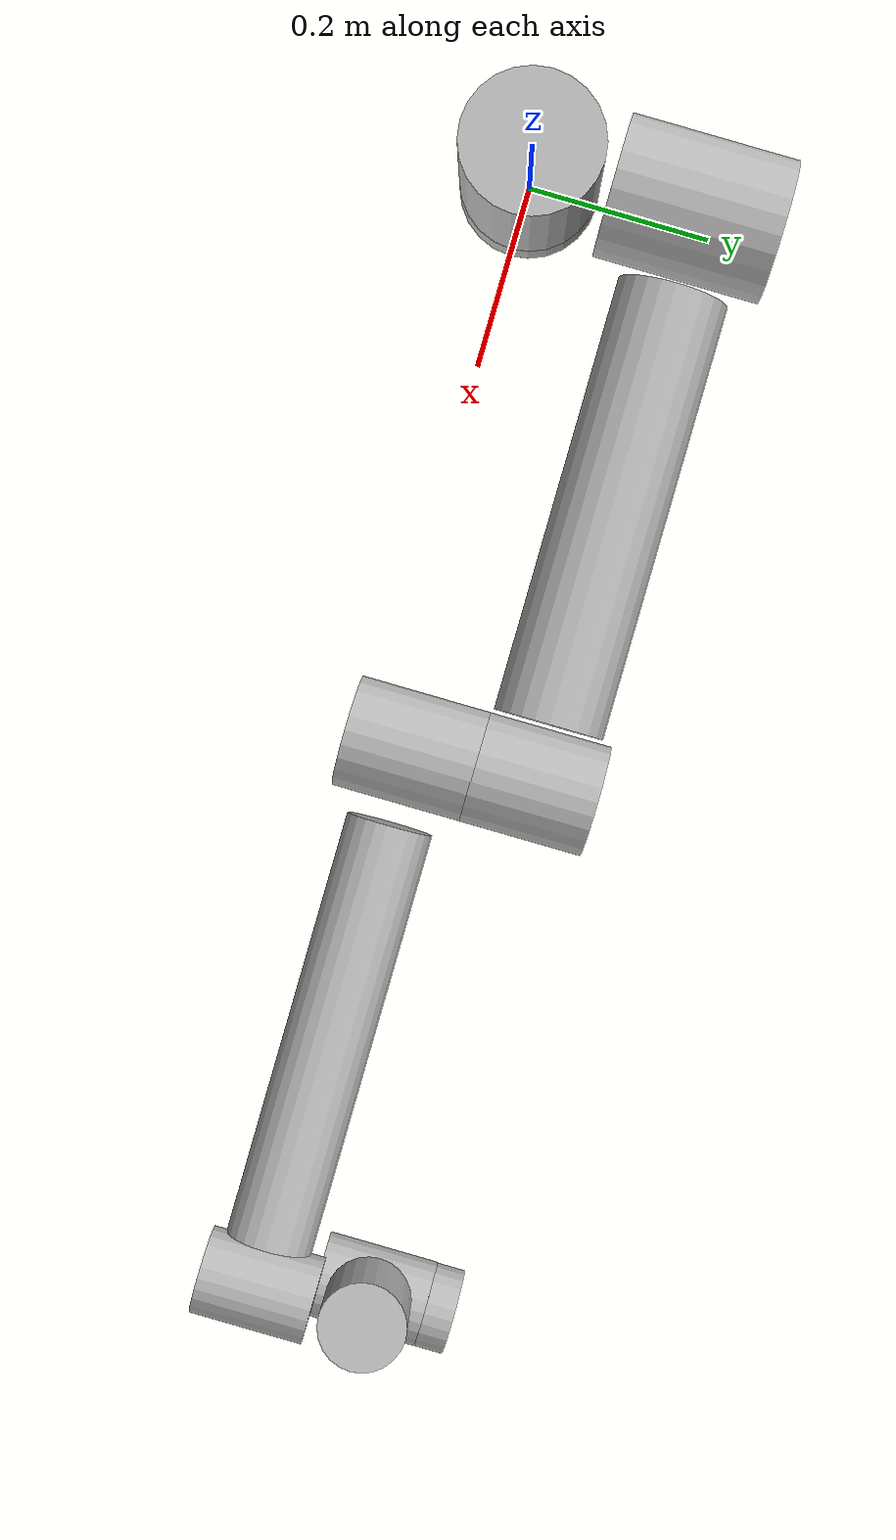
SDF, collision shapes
<?xml version='1.0'?>
<sdf version='1.5'>
  <model name='ur10'>
    <link name='base'>
      <inertial>
        <mass>4</mass>
        <inertia>
          <ixx>0.00610633</ixx>
          <ixy>0</ixy>
          <ixz>0</ixz>
          <iyy>0.00610633</iyy>
          <iyz>0</iyz>
          <izz>0.01125</izz>
        </inertia>
      </inertial>
      <collision name='base_collision'>
        <pose>0 0 0.019 0 -0 0</pose>
        <geometry>
          <cylinder>
            <radius>0.075</radius>
            <length>0.038</length>
          </cylinder>
        </geometry>
      </collision>
      <visual name='base_visual'>
        <geometry>
          <mesh>
            <uri>model://ur10/meshes/base.dae</uri>
          </mesh>
        </geometry>
      </visual>
    </link>
    <link name='shoulder'>
      <pose>0 0 .1273 0 -0 0</pose>
      <inertial>
        <mass>7.778</mass>
        <inertia>
          <ixx>0.0314743</ixx>
          <ixy>0</ixy>
          <ixz>0</ixz>
          <iyy>0.0314743</iyy>
          <iyz>0</iyz>
          <izz>0.0218756</izz>
        </inertia>
      </inertial>
      <collision name='shoulder_collision'>
        <geometry>
          <cylinder>
            <radius>0.075</radius>
            <length>0.177</length>
          </cylinder>
        </geometry>
      </collision>
      <visual name='shoulder_visual'>
        <geometry>
          <mesh>
            <uri>model://ur10/meshes/shoulder.dae</uri>
          </mesh>
        </geometry>
      </visual>
    </link>

    <link name='upper_arm'>
      <pose>0 0.220941 0.1273 3.14159 1.57079 3.14159</pose>
      <inertial>
        <pose>0 0 0.306 0 0 0</pose>
        <mass>12.93</mass>
        <inertia>
          <ixx>0.421754</ixx>
          <ixy>0</ixy>
          <ixz>0</ixz>
          <iyy>0.421754</iyy>
          <iyz>0</iyz>
          <izz>0.0363656</izz>
        </inertia>
      </inertial>

      <collision name='upper_arm_collision1'>
        <pose>0 -0.045 0 1.5707 0 0</pose>
        <geometry>
          <cylinder>
            <radius>0.075</radius>
            <length>0.177</length>
          </cylinder>
        </geometry>
      </collision>

      <collision name='upper_arm_collision2'>
        <pose>0 -0.0436 0.32 0 0 1.5707</pose>
        <geometry>
          <cylinder>
            <radius>0.058</radius>
            <length>0.461</length>
          </cylinder>
        </geometry>
      </collision>

      <collision name='upper_arm_collision3'>
        <pose>0 -0.040 0.613 1.5707 0 0</pose>
        <geometry>
          <cylinder>
            <radius>0.058</radius>
            <length>0.129</length>
          </cylinder>
        </geometry>
      </collision>

      <visual name='upper_arm_visual'>
        <geometry>
          <mesh>
            <uri>model://ur10/meshes/upperarm.dae</uri>
          </mesh>
        </geometry>
      </visual>
    </link>

    <link name='forearm'>
      <pose>0.612 0.049041 0.1273 3.14159 1.57079 3.14159</pose>
      <inertial>
        <pose>0 0 0.28615 0 -0 0</pose>
        <mass>3.87</mass>
        <inertia>
          <ixx>0.11107</ixx>
          <ixy>0</ixy>
          <ixz>0</ixz>
          <iyy>0.11107</iyy>
          <iyz>0</iyz>
          <izz>0.0108844</izz>
        </inertia>
      </inertial>
      <collision name='forearm_collision1'>
        <pose>0 0 0.001 1.5707 0 0</pose>
        <geometry>
          <cylinder>
            <radius>0.058</radius>
            <length>0.136</length>
          </cylinder>
        </geometry>
      </collision>

      <collision name='forearm_collision2'>
        <pose>0 0 0.305 0 0 1.5707</pose>
        <geometry>
          <cylinder>
            <radius>0.045</radius>
            <length>0.447</length>
          </cylinder>
        </geometry>
      </collision>

      <collision name='forearm_collision3'>
        <pose>0 0.001 0.5735 1.5707 0 0</pose>
        <geometry>
          <cylinder>
            <radius>0.045</radius>
            <length>0.119</length>
          </cylinder>
        </geometry>
      </collision>

      <visual name='forearm_visual'>
        <geometry>
          <mesh>
            <uri>model://ur10/meshes/forearm.dae</uri>
          </mesh>
        </geometry>
      </visual>
    </link>

    <link name='wrist_1'>
      <pose>1.1843 0.049041 0.1273 3.14159 3.58979e-09 3.14159</pose>
      <inertial>
        <mass>1.96</mass>
        <inertia>
          <ixx>0.00510825</ixx>
          <ixy>0</ixy>
          <ixz>0</ixz>
          <iyy>0.00510825</iyy>
          <iyz>0</iyz>
          <izz>0.0055125</izz>
        </inertia>
      </inertial>
      <collision name='wrist_1_collision'>
        <pose>0 0.115 0.0025 0 0 0</pose>
        <geometry>
          <cylinder>
            <radius>0.0455</radius>
            <length>0.119</length>
          </cylinder>
        </geometry>
      </collision>
      <visual name='wrist_1_visual'>
        <geometry>
          <mesh>
            <uri>model://ur10/meshes/wrist1.dae</uri>
          </mesh>
        </geometry>
      </visual>
    </link>

    <link name='wrist_2'>
      <pose>1.1843 0.163941 0.1273 3.14159 3.58979e-09 3.14159</pose>
      <inertial>
        <mass>1.96</mass>
        <inertia>
          <ixx>0.00510825</ixx>
          <ixy>0</ixy>
          <ixz>0</ixz>
          <iyy>0.00510825</iyy>
          <iyz>0</iyz>
          <izz>0.0055125</izz>
        </inertia>
      </inertial>
      <collision name='wrist_2_collision'>
        <pose>0 0.002 0.11659 1.5707 0 0</pose>
        <geometry>
          <cylinder>
            <radius>0.0455</radius>
            <length>0.119</length>
          </cylinder>
        </geometry>
      </collision>
      <visual name='wrist_2_visual'>
        <geometry>
          <mesh>
            <uri>model://ur10/meshes/wrist2.dae</uri>
          </mesh>
        </geometry>
      </visual>
    </link>

    <link name='wrist_3'>
      <pose>1.1843 0.163941 0.0116 3.14159 3.58979e-09 3.14159</pose>
      <inertial>
        <mass>0.202</mass>
        <inertia>
          <ixx>0.000526462</ixx>
          <ixy>0</ixy>
          <ixz>0</ixz>
          <iyy>0.000526462</iyy>
          <iyz>0</iyz>
          <izz>0.000568125</izz>
        </inertia>
      </inertial>
      <collision name='wrist_3_collision'>
        <pose>0 0.0765 0 1.5707 0 0</pose>
        <geometry>
          <cylinder>
            <radius>0.045</radius>
            <length>0.031</length>
          </cylinder>
        </geometry>
      </collision>
      <visual name='wrist_3_visual'>
        <geometry>
          <mesh>
            <uri>model://ur10/meshes/wrist3.dae</uri>
          </mesh>
        </geometry>
      </visual>
    </link>

    <joint type="fixed"  name="anchor" >
      <pose>0 0 0.019 0 -0 0</pose>
      <parent>world</parent>
      <child>base</child>
    </joint>

    <joint type='revolute' name='shoulder_pan'>
      <child>shoulder</child>
      <parent>base</parent>
      <axis>
        <xyz>0 0 1</xyz>
        <limit>
          <lower>-6.28319</lower>
          <upper>6.28319</upper>
          <effort>330</effort>
          <velocity>2.16</velocity>
        </limit>
        <use_parent_model_frame>1</use_parent_model_frame>
      </axis>
    </joint>

    <joint type='revolute' name='shoulder_lift'>
      <child>upper_arm</child>
      <parent>shoulder</parent>
      <axis>
        <xyz>0 1 0</xyz>
        <limit>
          <lower>-6.28319</lower>
          <upper>6.28319</upper>
          <effort>330</effort>
          <velocity>2.16</velocity>
        </limit>
        <use_parent_model_frame>1</use_parent_model_frame>
      </axis>
    </joint>

    <joint type='revolute' name='elbow'>
      <child>forearm</child>
      <parent>upper_arm</parent>
      <axis>
        <xyz>0 1 0</xyz>
        <limit>
          <lower>-6.28319</lower>
          <upper>6.28319</upper>
          <effort>150</effort>
          <velocity>3.15</velocity>
        </limit>
        <use_parent_model_frame>1</use_parent_model_frame>
      </axis>
    </joint>

    <joint type='revolute' name='joint_1'>
      <child>wrist_1</child>
      <parent>forearm</parent>
      <axis>
        <xyz>0 1 0</xyz>
        <limit>
          <lower>-6.28319</lower>
          <upper>6.28319</upper>
          <effort>54</effort>
          <velocity>3.2</velocity>
        </limit>
        <use_parent_model_frame>1</use_parent_model_frame>
      </axis>
    </joint>

    <joint type='revolute' name='joint_2'>
      <child>wrist_2</child>
      <parent>wrist_1</parent>
      <axis>
        <xyz>3.58979e-09 0 -1</xyz>
        <limit>
          <lower>-6.28319</lower>
          <upper>6.28319</upper>
          <effort>54</effort>
          <velocity>3.2</velocity>
        </limit>
        <use_parent_model_frame>1</use_parent_model_frame>
      </axis>
    </joint>

    <joint type='revolute' name='joint_3'>
      <child>wrist_3</child>
      <parent>wrist_2</parent>
      <axis>
        <xyz>0 1 0</xyz>
        <limit>
          <lower>-6.28319</lower>
          <upper>6.28319</upper>
          <effort>54</effort>
          <velocity>3.2</velocity>
        </limit>
        <use_parent_model_frame>true</use_parent_model_frame>
      </axis>
    </joint>
  </model>
</sdf>
